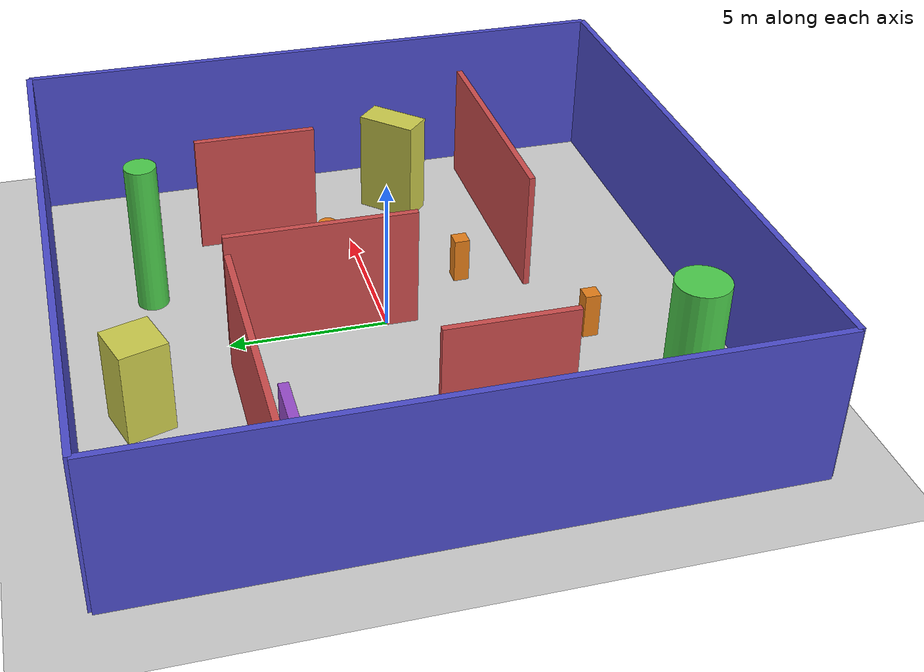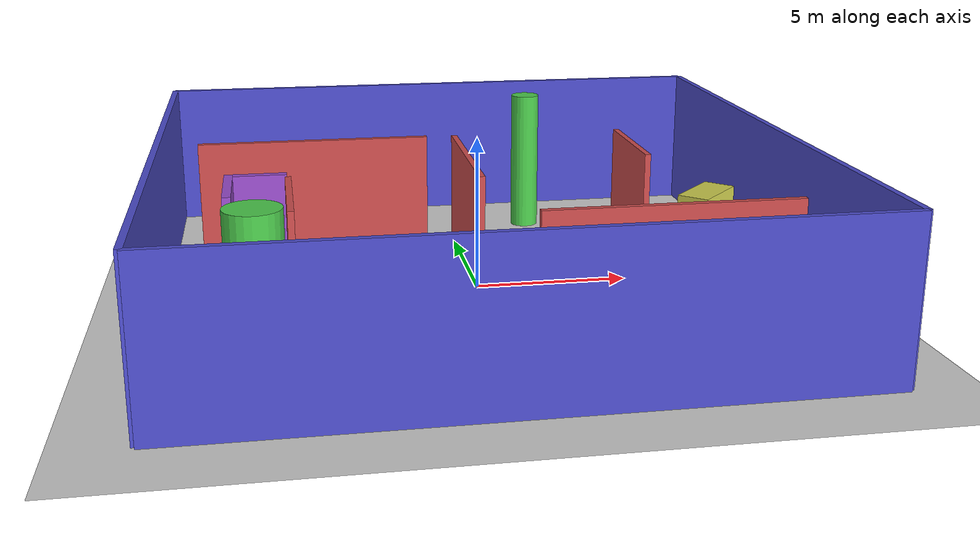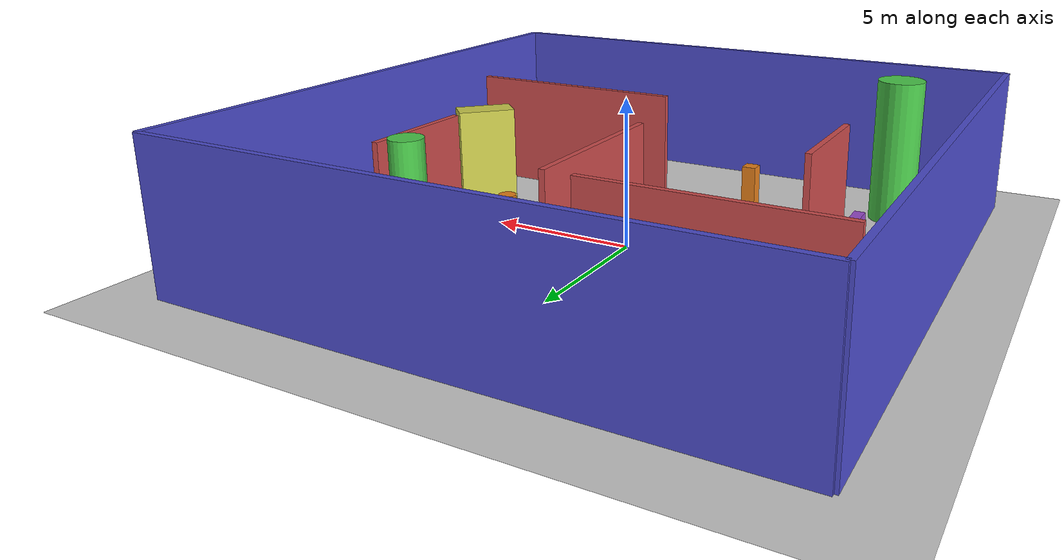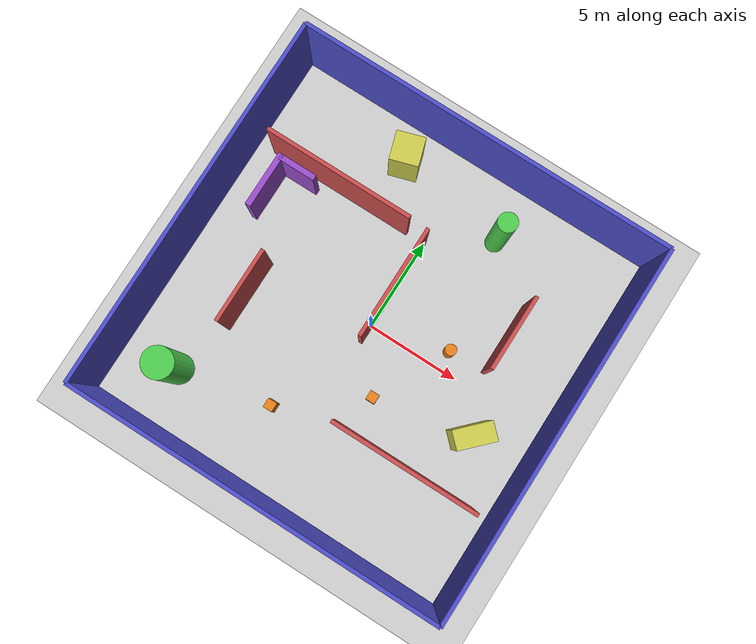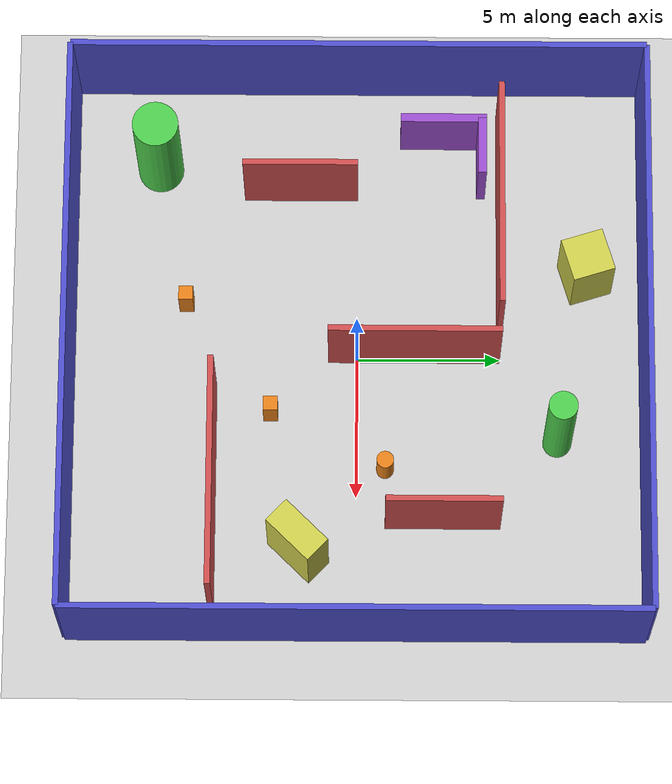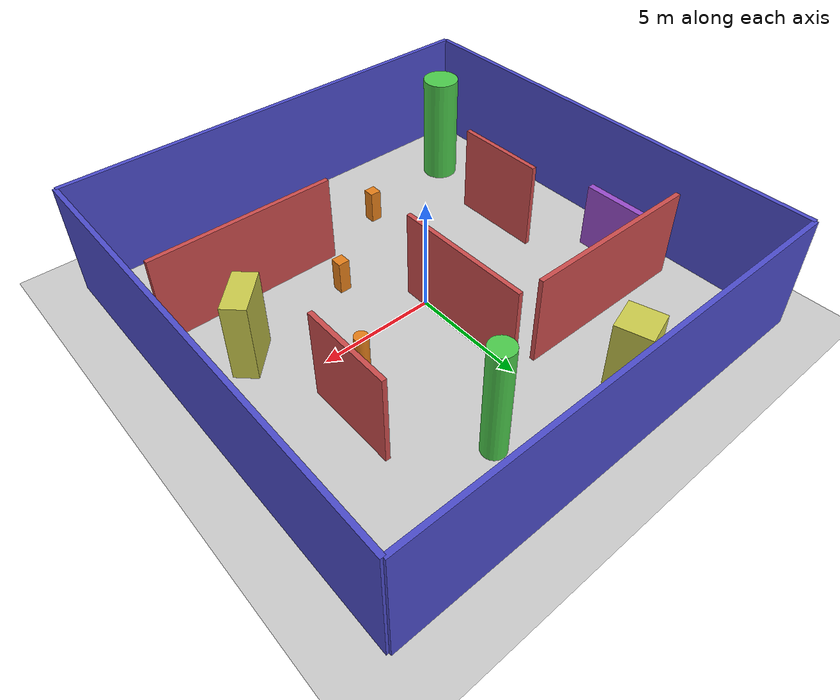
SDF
<?xml version="1.0" ?>
<sdf version="1.6">
  <world name="default">

    <!-- Essential world plugins -->
    <plugin filename="gz-sim-physics-system" name="gz::sim::systems::Physics">
    </plugin>
    <plugin filename="gz-sim-user-commands-system" name="gz::sim::systems::UserCommands">
    </plugin>
    <plugin filename="gz-sim-scene-broadcaster-system" name="gz::sim::systems::SceneBroadcaster">
    </plugin>
    <plugin filename="gz-sim-sensors-system" name="gz::sim::systems::Sensors">
      <render_engine>ogre2</render_engine>
    </plugin>
    <plugin filename="gz-sim-imu-system" name="gz::sim::systems::Imu">
    </plugin>

    <physics name="1ms" type="ignored">
      <max_step_size>0.001</max_step_size>
      <real_time_factor>1.0</real_time_factor>
    </physics>

    <scene>
      <ambient>0.4 0.4 0.4</ambient>
      <background>0.7 0.7 0.7</background>
      <shadows>true</shadows>
    </scene>

    <light type="directional" name="sun">
      <cast_shadows>true</cast_shadows>
      <pose>0 0 10 0 0 0</pose>
      <diffuse>0.8 0.8 0.8 1</diffuse>
      <specular>0.2 0.2 0.2 1</specular>
      <attenuation>
        <range>1000</range>
        <constant>0.9</constant>
        <linear>0.01</linear>
        <quadratic>0.001</quadratic>
      </attenuation>
      <direction>-0.5 0.1 -0.9</direction>
    </light>

    <model name="ground_plane">
      <static>true</static>
      <link name="link">
        <collision name="collision">
          <geometry>
            <plane>
              <normal>0 0 1</normal>
              <size>100 100</size>
            </plane>
          </geometry>
        </collision>
        <visual name="visual">
          <geometry>
            <plane>
              <normal>0 0 1</normal>
              <size>100 100</size>
            </plane>
          </geometry>
          <material>
            <ambient>0.8 0.8 0.8 1</ambient>
            <diffuse>0.8 0.8 0.8 1</diffuse>
            <specular>0.8 0.8 0.8 1</specular>
          </material>
        </visual>
      </link>
    </model>

    <!-- MAZE WALLS -->
    <!-- Outer boundary walls -->
    <model name="wall_north">
      <static>true</static>
      <pose>0 10 2.5 0 0 0</pose>
      <link name="link">
        <collision name="collision">
          <geometry>
            <box>
              <size>20 0.2 5</size>
            </box>
          </geometry>
        </collision>
        <visual name="visual">
          <geometry>
            <box>
              <size>20 0.2 5</size>
            </box>
          </geometry>
          <material>
            <ambient>0.3 0.3 0.8 1</ambient>
            <diffuse>0.3 0.3 0.8 1</diffuse>
          </material>
        </visual>
      </link>
    </model>

    <model name="wall_south">
      <static>true</static>
      <pose>0 -10 2.5 0 0 0</pose>
      <link name="link">
        <collision name="collision">
          <geometry>
            <box>
              <size>20 0.2 5</size>
            </box>
          </geometry>
        </collision>
        <visual name="visual">
          <geometry>
            <box>
              <size>20 0.2 5</size>
            </box>
          </geometry>
          <material>
            <ambient>0.3 0.3 0.8 1</ambient>
            <diffuse>0.3 0.3 0.8 1</diffuse>
          </material>
        </visual>
      </link>
    </model>

    <model name="wall_east">
      <static>true</static>
      <pose>10 0 2.5 0 0 0</pose>
      <link name="link">
        <collision name="collision">
          <geometry>
            <box>
              <size>0.2 20 5</size>
            </box>
          </geometry>
        </collision>
        <visual name="visual">
          <geometry>
            <box>
              <size>0.2 20 5</size>
            </box>
          </geometry>
          <material>
            <ambient>0.3 0.3 0.8 1</ambient>
            <diffuse>0.3 0.3 0.8 1</diffuse>
          </material>
        </visual>
      </link>
    </model>

    <model name="wall_west">
      <static>true</static>
      <pose>-10 0 2.5 0 0 0</pose>
      <link name="link">
        <collision name="collision">
          <geometry>
            <box>
              <size>0.2 20 5</size>
            </box>
          </geometry>
        </collision>
        <visual name="visual">
          <geometry>
            <box>
              <size>0.2 20 5</size>
            </box>
          </geometry>
          <material>
            <ambient>0.3 0.3 0.8 1</ambient>
            <diffuse>0.3 0.3 0.8 1</diffuse>
          </material>
        </visual>
      </link>
    </model>

    <!-- Inner maze walls -->
    <model name="maze_wall_1">
      <static>true</static>
      <pose>-5 5 2 0 0 0</pose>
      <link name="link">
        <collision name="collision">
          <geometry>
            <box>
              <size>8 0.2 4</size>
            </box>
          </geometry>
        </collision>
        <visual name="visual">
          <geometry>
            <box>
              <size>8 0.2 4</size>
            </box>
          </geometry>
          <material>
            <ambient>0.8 0.3 0.3 1</ambient>
            <diffuse>0.8 0.3 0.3 1</diffuse>
          </material>
        </visual>
      </link>
    </model>

    <model name="maze_wall_2">
      <static>true</static>
      <pose>5 -5 2 0 0 0</pose>
      <link name="link">
        <collision name="collision">
          <geometry>
            <box>
              <size>8 0.2 4</size>
            </box>
          </geometry>
        </collision>
        <visual name="visual">
          <geometry>
            <box>
              <size>8 0.2 4</size>
            </box>
          </geometry>
          <material>
            <ambient>0.8 0.3 0.3 1</ambient>
            <diffuse>0.8 0.3 0.3 1</diffuse>
          </material>
        </visual>
      </link>
    </model>

    <model name="maze_wall_3">
      <static>true</static>
      <pose>0 2 2 0 0 1.57</pose>
      <link name="link">
        <collision name="collision">
          <geometry>
            <box>
              <size>6 0.2 4</size>
            </box>
          </geometry>
        </collision>
        <visual name="visual">
          <geometry>
            <box>
              <size>6 0.2 4</size>
            </box>
          </geometry>
          <material>
            <ambient>0.8 0.3 0.3 1</ambient>
            <diffuse>0.8 0.3 0.3 1</diffuse>
          </material>
        </visual>
      </link>
    </model>

    <model name="maze_wall_4">
      <static>true</static>
      <pose>-6 -2 2 0 0 1.57</pose>
      <link name="link">
        <collision name="collision">
          <geometry>
            <box>
              <size>4 0.2 4</size>
            </box>
          </geometry>
        </collision>
        <visual name="visual">
          <geometry>
            <box>
              <size>4 0.2 4</size>
            </box>
          </geometry>
          <material>
            <ambient>0.8 0.3 0.3 1</ambient>
            <diffuse>0.8 0.3 0.3 1</diffuse>
          </material>
        </visual>
      </link>
    </model>

    <model name="maze_wall_5">
      <static>true</static>
      <pose>6 3 2 0 0 1.57</pose>
      <link name="link">
        <collision name="collision">
          <geometry>
            <box>
              <size>4 0.2 4</size>
            </box>
          </geometry>
        </collision>
        <visual name="visual">
          <geometry>
            <box>
              <size>4 0.2 4</size>
            </box>
          </geometry>
          <material>
            <ambient>0.8 0.3 0.3 1</ambient>
            <diffuse>0.8 0.3 0.3 1</diffuse>
          </material>
        </visual>
      </link>
    </model>

    <!-- SCATTERED OBSTACLES -->
    <!-- Cylindrical obstacles -->
    <model name="cylinder_obstacle_1">
      <static>true</static>
      <pose>3 7 2.5 0 0 0</pose>
      <link name="link">
        <collision name="collision">
          <geometry>
            <cylinder>
              <radius>0.5</radius>
              <length>5</length>
            </cylinder>
          </geometry>
        </collision>
        <visual name="visual">
          <geometry>
            <cylinder>
              <radius>0.5</radius>
              <length>5</length>
            </cylinder>
          </geometry>
          <material>
            <ambient>0.3 0.8 0.3 1</ambient>
            <diffuse>0.3 0.8 0.3 1</diffuse>
          </material>
        </visual>
      </link>
    </model>

    <model name="cylinder_obstacle_2">
      <static>true</static>
      <pose>-7 -7 2.5 0 0 0</pose>
      <link name="link">
        <collision name="collision">
          <geometry>
            <cylinder>
              <radius>0.8</radius>
              <length>5</length>
            </cylinder>
          </geometry>
        </collision>
        <visual name="visual">
          <geometry>
            <cylinder>
              <radius>0.8</radius>
              <length>5</length>
            </cylinder>
          </geometry>
          <material>
            <ambient>0.3 0.8 0.3 1</ambient>
            <diffuse>0.3 0.8 0.3 1</diffuse>
          </material>
        </visual>
      </link>
    </model>

    <!-- Box obstacles -->
    <model name="box_obstacle_1">
      <static>true</static>
      <pose>-3 8 1.5 0 0 0.3</pose>
      <link name="link">
        <collision name="collision">
          <geometry>
            <box>
              <size>1.5 1.5 3</size>
            </box>
          </geometry>
        </collision>
        <visual name="visual">
          <geometry>
            <box>
              <size>1.5 1.5 3</size>
            </box>
          </geometry>
          <material>
            <ambient>0.8 0.8 0.3 1</ambient>
            <diffuse>0.8 0.8 0.3 1</diffuse>
          </material>
        </visual>
      </link>
    </model>

    <model name="box_obstacle_2">
      <static>true</static>
      <pose>7 -2 1.75 0 0 0.8</pose>
      <link name="link">
        <collision name="collision">
          <geometry>
            <box>
              <size>2 1 3.5</size>
            </box>
          </geometry>
        </collision>
        <visual name="visual">
          <geometry>
            <box>
              <size>2 1 3.5</size>
            </box>
          </geometry>
          <material>
            <ambient>0.8 0.8 0.3 1</ambient>
            <diffuse>0.8 0.8 0.3 1</diffuse>
          </material>
        </visual>
      </link>
    </model>

    <!-- L-shaped obstacle -->
    <model name="L_obstacle_1">
      <static>true</static>
      <pose>-8 3 1.5 0 0 0</pose>
      <link name="link">
        <collision name="collision">
          <geometry>
            <box>
              <size>0.3 3 3</size>
            </box>
          </geometry>
        </collision>
        <visual name="visual">
          <geometry>
            <box>
              <size>0.3 3 3</size>
            </box>
          </geometry>
          <material>
            <ambient>0.6 0.3 0.8 1</ambient>
            <diffuse>0.6 0.3 0.8 1</diffuse>
          </material>
        </visual>
      </link>
    </model>

    <model name="L_obstacle_2">
      <static>true</static>
      <pose>-7 4.35 1.5 0 0 0</pose>
      <link name="link">
        <collision name="collision">
          <geometry>
            <box>
              <size>2 0.3 3</size>
            </box>
          </geometry>
        </collision>
        <visual name="visual">
          <geometry>
            <box>
              <size>2 0.3 3</size>
            </box>
          </geometry>
          <material>
            <ambient>0.6 0.3 0.8 1</ambient>
            <diffuse>0.6 0.3 0.8 1</diffuse>
          </material>
        </visual>
      </link>
    </model>

    <!-- Small scattered obstacles for navigation challenges -->
    <model name="small_obs_1">
      <static>true</static>
      <pose>2 -3 0.75 0 0 0</pose>
      <link name="link">
        <collision name="collision">
          <geometry>
            <box>
              <size>0.5 0.5 1.5</size>
            </box>
          </geometry>
        </collision>
        <visual name="visual">
          <geometry>
            <box>
              <size>0.5 0.5 1.5</size>
            </box>
          </geometry>
          <material>
            <ambient>0.9 0.5 0.1 1</ambient>
            <diffuse>0.9 0.5 0.1 1</diffuse>
          </material>
        </visual>
      </link>
    </model>

    <model name="small_obs_2">
      <static>true</static>
      <pose>-2 -6 0.75 0 0 0</pose>
      <link name="link">
        <collision name="collision">
          <geometry>
            <box>
              <size>0.5 0.5 1.5</size>
            </box>
          </geometry>
        </collision>
        <visual name="visual">
          <geometry>
            <box>
              <size>0.5 0.5 1.5</size>
            </box>
          </geometry>
          <material>
            <ambient>0.9 0.5 0.1 1</ambient>
            <diffuse>0.9 0.5 0.1 1</diffuse>
          </material>
        </visual>
      </link>
    </model>

    <model name="small_obs_3">
      <static>true</static>
      <pose>4 1 0.75 0 0 0</pose>
      <link name="link">
        <collision name="collision">
          <geometry>
            <cylinder>
              <radius>0.3</radius>
              <length>1.5</length>
            </cylinder>
          </geometry>
        </collision>
        <visual name="visual">
          <geometry>
            <cylinder>
              <radius>0.3</radius>
              <length>1.5</length>
            </cylinder>
          </geometry>
          <material>
            <ambient>0.9 0.5 0.1 1</ambient>
            <diffuse>0.9 0.5 0.1 1</diffuse>
          </material>
        </visual>
      </link>
    </model>

  </world>
</sdf>
